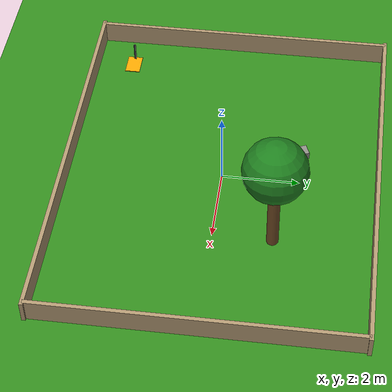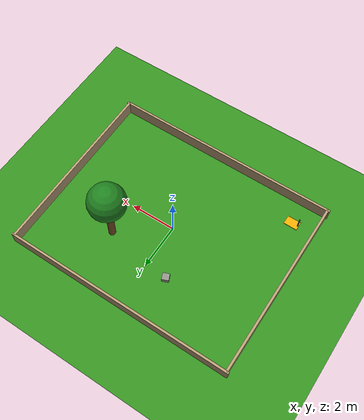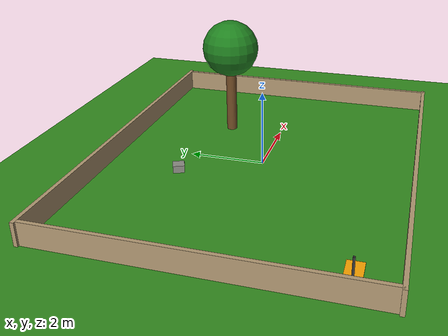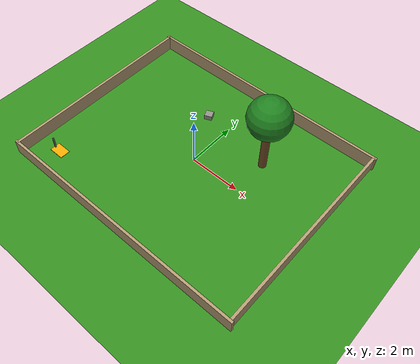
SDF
<?xml version="1.0"?>
<sdf version="1.9">
  <world name="small_garden">

    <!-- ================================================================
         Physics  (identical to garden.sdf)
         ================================================================ -->
    <physics name="default_physics" default="true" type="ode">
      <max_step_size>0.001</max_step_size>
      <real_time_factor>1.0</real_time_factor>
      <real_time_update_rate>1000</real_time_update_rate>
      <ode>
        <solver>
          <type>quick</type>
          <iters>150</iters>
          <sor>1.4</sor>
        </solver>
        <constraints>
          <cfm>0.0</cfm>
          <erp>0.2</erp>
          <contact_max_correcting_vel>10.0</contact_max_correcting_vel>
          <contact_surface_layer>0.001</contact_surface_layer>
        </constraints>
      </ode>
    </physics>

    <!-- ================================================================
         Required Gazebo Harmonic plugins
         ================================================================ -->
    <plugin filename="gz-sim-physics-system"
            name="gz::sim::systems::Physics"/>

    <plugin filename="gz-sim-user-commands-system"
            name="gz::sim::systems::UserCommands"/>

    <plugin filename="gz-sim-scene-broadcaster-system"
            name="gz::sim::systems::SceneBroadcaster"/>

    <plugin filename="gz-sim-contact-system"
            name="gz::sim::systems::Contact"/>

    <plugin filename="gz-sim-imu-system"
            name="gz::sim::systems::Imu"/>

    <plugin filename="gz-sim-navsat-system"
            name="gz::sim::systems::NavSat"/>

    <spherical_coordinates>
      <surface_model>EARTH_WGS84</surface_model>
      <world_frame_orientation>ENU</world_frame_orientation>
      <latitude_deg>48.137154</latitude_deg>
      <longitude_deg>11.576124</longitude_deg>
      <elevation>520.0</elevation>
      <heading_deg>0</heading_deg>
    </spherical_coordinates>

    <plugin filename="gz-sim-sensors-system"
            name="gz::sim::systems::Sensors">
      <render_engine>ogre2</render_engine>
    </plugin>

    <!-- ================================================================
         Lighting  (identical to garden.sdf)
         ================================================================ -->
    <light name="sun" type="directional">
      <cast_shadows>true</cast_shadows>
      <pose>0 0 10 0 0 0</pose>
      <diffuse>0.9 0.9 0.9 1</diffuse>
      <specular>0.3 0.3 0.3 1</specular>
      <direction>-0.5 0.1 -0.9</direction>
      <attenuation>
        <range>1000</range>
        <constant>0.9</constant>
        <linear>0.01</linear>
        <quadratic>0.001</quadratic>
      </attenuation>
    </light>

    <!-- Ambient sky -->
    <scene>
      <ambient>0.6 0.6 0.6 1.0</ambient>
      <background>0.53 0.81 0.92 1.0</background>
      <shadows>true</shadows>
    </scene>

    <model name="ground_plane">
      <static>true</static>
      <link name="link">
        <collision name="collision">
          <geometry>
            <plane>
              <normal>0 0 1</normal>
              <size>12 10</size>
            </plane>
          </geometry>
          <surface>
            <friction>
              <ode>
                <mu>0.8</mu>
                <mu2>0.8</mu2>
              </ode>
            </friction>
          </surface>
        </collision>
        <visual name="visual">
          <geometry>
            <plane>
              <normal>0 0 1</normal>
              <size>12 10</size>
            </plane>
          </geometry>
          <material>
            <ambient>0.18 0.45 0.10 1</ambient>
            <diffuse>0.20 0.55 0.12 1</diffuse>
            <specular>0.05 0.05 0.05 1</specular>
          </material>
        </visual>
      </link>
    </model>

    <!-- North wall  y = +4.0, spans x axis, length = 10.2 m (covers corners) -->
    <model name="wall_north">
      <static>true</static>
      <pose>0 4.0 0.30 0 0 0</pose>
      <link name="link">
        <collision name="collision">
          <geometry><box><size>10.2 0.1 0.6</size></box></geometry>
        </collision>
        <visual name="visual">
          <geometry><box><size>10.2 0.1 0.6</size></box></geometry>
          <material>
            <ambient>0.65 0.55 0.40 1</ambient>
            <diffuse>0.70 0.60 0.45 1</diffuse>
          </material>
        </visual>
      </link>
    </model>

    <!-- South wall  y = -4.0 -->
    <model name="wall_south">
      <static>true</static>
      <pose>0 -4.0 0.30 0 0 0</pose>
      <link name="link">
        <collision name="collision">
          <geometry><box><size>10.2 0.1 0.6</size></box></geometry>
        </collision>
        <visual name="visual">
          <geometry><box><size>10.2 0.1 0.6</size></box></geometry>
          <material>
            <ambient>0.65 0.55 0.40 1</ambient>
            <diffuse>0.70 0.60 0.45 1</diffuse>
          </material>
        </visual>
      </link>
    </model>

    <!-- West wall  x = -5.0, rotated 90° to span y axis, length = 8.0 m -->
    <model name="wall_west">
      <static>true</static>
      <pose>-5.0 0 0.30 0 0 1.5708</pose>
      <link name="link">
        <collision name="collision">
          <geometry><box><size>8.0 0.1 0.6</size></box></geometry>
        </collision>
        <visual name="visual">
          <geometry><box><size>8.0 0.1 0.6</size></box></geometry>
          <material>
            <ambient>0.65 0.55 0.40 1</ambient>
            <diffuse>0.70 0.60 0.45 1</diffuse>
          </material>
        </visual>
      </link>
    </model>

    <!-- East wall  x = +5.0 -->
    <model name="wall_east">
      <static>true</static>
      <pose>5.0 0 0.30 0 0 1.5708</pose>
      <link name="link">
        <collision name="collision">
          <geometry><box><size>8.0 0.1 0.6</size></box></geometry>
        </collision>
        <visual name="visual">
          <geometry><box><size>8.0 0.1 0.6</size></box></geometry>
          <material>
            <ambient>0.65 0.55 0.40 1</ambient>
            <diffuse>0.70 0.60 0.45 1</diffuse>
          </material>
        </visual>
      </link>
    </model>

    <model name="tree">
      <static>true</static>
      <pose>2.0 1.5 1.0 0 0 0</pose>
      <link name="trunk">
        <collision name="collision">
          <geometry>
            <cylinder><radius>0.15</radius><length>2.0</length></cylinder>
          </geometry>
        </collision>
        <visual name="visual">
          <geometry>
            <cylinder><radius>0.15</radius><length>2.0</length></cylinder>
          </geometry>
          <material>
            <ambient>0.40 0.26 0.13 1</ambient>
            <diffuse>0.45 0.30 0.15 1</diffuse>
          </material>
        </visual>
      </link>
      <!-- Canopy sphere — no collision, visual only -->
      <link name="canopy">
        <pose>0 0 1.5 0 0 0</pose>
        <visual name="visual">
          <geometry>
            <sphere><radius>0.8</radius></sphere>
          </geometry>
          <material>
            <ambient>0.10 0.40 0.10 1</ambient>
            <diffuse>0.12 0.50 0.12 1</diffuse>
          </material>
        </visual>
        <inertial>
          <mass>0.001</mass>
          <inertia><ixx>1e-6</ixx><ixy>0</ixy><ixz>0</ixz>
                   <iyy>1e-6</iyy><iyz>0</iyz><izz>1e-6</izz></inertia>
        </inertial>
      </link>
      <joint name="canopy_joint" type="fixed">
        <parent>trunk</parent>
        <child>canopy</child>
      </joint>
    </model>

    <model name="rock">
      <static>true</static>
      <pose>-1.0 2.0 0.1 0 0 0.4</pose>
      <link name="link">
        <collision name="collision">
          <geometry>
            <box><size>0.3 0.3 0.2</size></box>
          </geometry>
        </collision>
        <visual name="visual">
          <geometry>
            <box><size>0.3 0.3 0.2</size></box>
          </geometry>
          <material>
            <ambient>0.50 0.50 0.48 1</ambient>
            <diffuse>0.55 0.55 0.52 1</diffuse>
          </material>
        </visual>
      </link>
    </model>

    <model name="docking_station">
      <static>true</static>
      <pose>-4.0 -3.0 0.01 0 0 0</pose>
      <link name="base_plate">
        <collision name="collision">
          <geometry>
            <box><size>0.6 0.4 0.02</size></box>
          </geometry>
        </collision>
        <visual name="visual">
          <geometry>
            <box><size>0.6 0.4 0.02</size></box>
          </geometry>
          <material>
            <ambient>1.0 0.60 0.0 1</ambient>
            <diffuse>1.0 0.65 0.0 1</diffuse>
            <specular>0.3 0.3 0.1 1</specular>
          </material>
        </visual>
      </link>
      <!-- Upright charging post -->
      <link name="post">
        <pose>-0.25 0 0.25 0 0 0</pose>
        <collision name="collision">
          <geometry>
            <box><size>0.05 0.05 0.5</size></box>
          </geometry>
        </collision>
        <visual name="visual">
          <geometry>
            <box><size>0.05 0.05 0.5</size></box>
          </geometry>
          <material>
            <ambient>0.15 0.15 0.15 1</ambient>
            <diffuse>0.20 0.20 0.20 1</diffuse>
          </material>
        </visual>
        <inertial>
          <mass>0.001</mass>
          <inertia><ixx>1e-6</ixx><ixy>0</ixy><ixz>0</ixz>
                   <iyy>1e-6</iyy><iyz>0</iyz><izz>1e-6</izz></inertia>
        </inertial>
      </link>
      <joint name="post_joint" type="fixed">
        <parent>base_plate</parent>
        <child>post</child>
      </joint>
    </model>

  </world>
</sdf>
